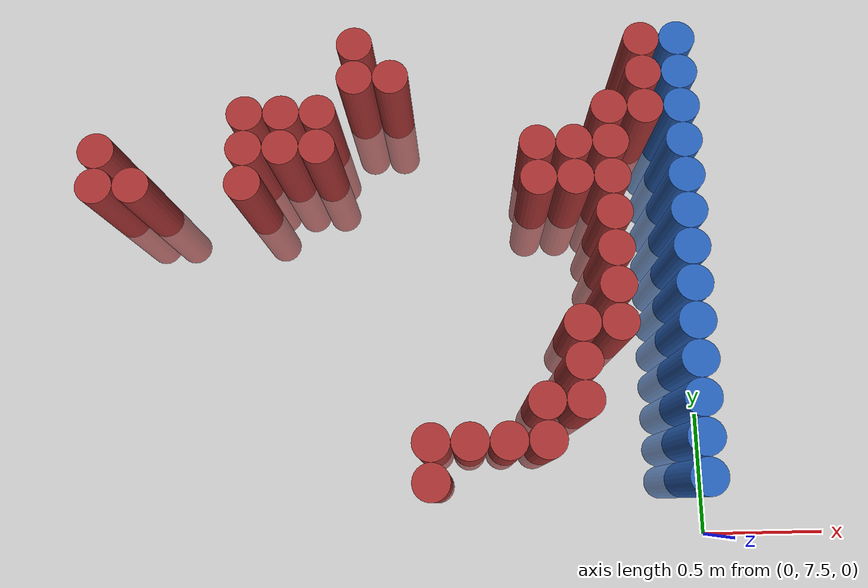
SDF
<sdf version="1.6">
 <world name="default">
  <model name="ground_plane">
   <static>1</static>
   <link name="link">
    <collision name="collision">
     <geometry><plane><normal>0 0 1</normal><size>100 100</size></plane></geometry>
     <surface><friction><ode><mu>100</mu><mu2>50</mu2></ode></friction></surface>
    </collision>
    <visual name="visual">
     <cast_shadows>0</cast_shadows>
     <geometry><plane><normal>0 0 1</normal><size>100 100</size></plane></geometry>
     <material>
      <script><uri>file://media/materials/scripts/gazebo.material</uri><name>Gazebo/Grey</name></script>
     </material>
    </visual>
   </link>
  </model>
  <model name="unit_cylinder_165">
   <static>1</static>
   <pose>-2.475000 8.925000 0.000000 0.000000 0.000000 0.000000</pose>
   <link name="link">
    <inertial>
     <mass>1</mass>
     <inertia><ixx>0.145833</ixx><ixy>0</ixy><ixz>0</ixz><iyy>0.145833</iyy><iyz>0</iyz><izz>0.125</izz></inertia>
    </inertial>
    <collision name="collision">
     <geometry><cylinder><radius>0.075000</radius><length>1</length></cylinder></geometry>
    </collision>
    <visual name="visual">
     <geometry><cylinder><radius>0.075000</radius><length>1</length></cylinder></geometry>
     <material>
      <ambient>0.648000 0.192000 0.192000 1</ambient>
      <diffuse>0.648000 0.192000 0.192000 1</diffuse>
     </material>
     <material>
      <script><name>Gazebo/Grey</name><uri>file://media/materials/scripts/gazebo.material</uri></script>
     </material>
    </visual>
   </link>
  </model>
  <model name="unit_cylinder_166">
   <static>1</static>
   <pose>-2.475000 9.075000 0.000000 0.000000 0.000000 0.000000</pose>
   <link name="link">
    <inertial>
     <mass>1</mass>
     <inertia><ixx>0.145833</ixx><ixy>0</ixy><ixz>0</ixz><iyy>0.145833</iyy><iyz>0</iyz><izz>0.125</izz></inertia>
    </inertial>
    <collision name="collision">
     <geometry><cylinder><radius>0.075000</radius><length>1</length></cylinder></geometry>
    </collision>
    <visual name="visual">
     <geometry><cylinder><radius>0.075000</radius><length>1</length></cylinder></geometry>
     <material>
      <ambient>0.648000 0.192000 0.192000 1</ambient>
      <diffuse>0.648000 0.192000 0.192000 1</diffuse>
     </material>
     <material>
      <script><name>Gazebo/Grey</name><uri>file://media/materials/scripts/gazebo.material</uri></script>
     </material>
    </visual>
   </link>
  </model>
  <model name="unit_cylinder_167">
   <static>1</static>
   <pose>-2.325000 8.925000 0.000000 0.000000 0.000000 0.000000</pose>
   <link name="link">
    <inertial>
     <mass>1</mass>
     <inertia><ixx>0.145833</ixx><ixy>0</ixy><ixz>0</ixz><iyy>0.145833</iyy><iyz>0</iyz><izz>0.125</izz></inertia>
    </inertial>
    <collision name="collision">
     <geometry><cylinder><radius>0.075000</radius><length>1</length></cylinder></geometry>
    </collision>
    <visual name="visual">
     <geometry><cylinder><radius>0.075000</radius><length>1</length></cylinder></geometry>
     <material>
      <ambient>0.648000 0.192000 0.192000 1</ambient>
      <diffuse>0.648000 0.192000 0.192000 1</diffuse>
     </material>
     <material>
      <script><name>Gazebo/Grey</name><uri>file://media/materials/scripts/gazebo.material</uri></script>
     </material>
    </visual>
   </link>
  </model>
  <model name="unit_cylinder_176">
   <static>1</static>
   <pose>-1.875000 8.925000 0.000000 0.000000 0.000000 0.000000</pose>
   <link name="link">
    <inertial>
     <mass>1</mass>
     <inertia><ixx>0.145833</ixx><ixy>0</ixy><ixz>0</ixz><iyy>0.145833</iyy><iyz>0</iyz><izz>0.125</izz></inertia>
    </inertial>
    <collision name="collision">
     <geometry><cylinder><radius>0.075000</radius><length>1</length></cylinder></geometry>
    </collision>
    <visual name="visual">
     <geometry><cylinder><radius>0.075000</radius><length>1</length></cylinder></geometry>
     <material>
      <ambient>0.648000 0.192000 0.192000 1</ambient>
      <diffuse>0.648000 0.192000 0.192000 1</diffuse>
     </material>
     <material>
      <script><name>Gazebo/Grey</name><uri>file://media/materials/scripts/gazebo.material</uri></script>
     </material>
    </visual>
   </link>
  </model>
  <model name="unit_cylinder_177">
   <static>1</static>
   <pose>-1.875000 9.075000 0.000000 0.000000 0.000000 0.000000</pose>
   <link name="link">
    <inertial>
     <mass>1</mass>
     <inertia><ixx>0.145833</ixx><ixy>0</ixy><ixz>0</ixz><iyy>0.145833</iyy><iyz>0</iyz><izz>0.125</izz></inertia>
    </inertial>
    <collision name="collision">
     <geometry><cylinder><radius>0.075000</radius><length>1</length></cylinder></geometry>
    </collision>
    <visual name="visual">
     <geometry><cylinder><radius>0.075000</radius><length>1</length></cylinder></geometry>
     <material>
      <ambient>0.648000 0.192000 0.192000 1</ambient>
      <diffuse>0.648000 0.192000 0.192000 1</diffuse>
     </material>
     <material>
      <script><name>Gazebo/Grey</name><uri>file://media/materials/scripts/gazebo.material</uri></script>
     </material>
    </visual>
   </link>
  </model>
  <model name="unit_cylinder_178">
   <static>1</static>
   <pose>-1.875000 9.225000 0.000000 0.000000 0.000000 0.000000</pose>
   <link name="link">
    <inertial>
     <mass>1</mass>
     <inertia><ixx>0.145833</ixx><ixy>0</ixy><ixz>0</ixz><iyy>0.145833</iyy><iyz>0</iyz><izz>0.125</izz></inertia>
    </inertial>
    <collision name="collision">
     <geometry><cylinder><radius>0.075000</radius><length>1</length></cylinder></geometry>
    </collision>
    <visual name="visual">
     <geometry><cylinder><radius>0.075000</radius><length>1</length></cylinder></geometry>
     <material>
      <ambient>0.648000 0.192000 0.192000 1</ambient>
      <diffuse>0.648000 0.192000 0.192000 1</diffuse>
     </material>
     <material>
      <script><name>Gazebo/Grey</name><uri>file://media/materials/scripts/gazebo.material</uri></script>
     </material>
    </visual>
   </link>
  </model>
  <model name="unit_cylinder_188">
   <static>1</static>
   <pose>-1.725000 9.075000 0.000000 0.000000 0.000000 0.000000</pose>
   <link name="link">
    <inertial>
     <mass>1</mass>
     <inertia><ixx>0.145833</ixx><ixy>0</ixy><ixz>0</ixz><iyy>0.145833</iyy><iyz>0</iyz><izz>0.125</izz></inertia>
    </inertial>
    <collision name="collision">
     <geometry><cylinder><radius>0.075000</radius><length>1</length></cylinder></geometry>
    </collision>
    <visual name="visual">
     <geometry><cylinder><radius>0.075000</radius><length>1</length></cylinder></geometry>
     <material>
      <ambient>0.648000 0.192000 0.192000 1</ambient>
      <diffuse>0.648000 0.192000 0.192000 1</diffuse>
     </material>
     <material>
      <script><name>Gazebo/Grey</name><uri>file://media/materials/scripts/gazebo.material</uri></script>
     </material>
    </visual>
   </link>
  </model>
  <model name="unit_cylinder_189">
   <static>1</static>
   <pose>-1.725000 9.225000 0.000000 0.000000 0.000000 0.000000</pose>
   <link name="link">
    <inertial>
     <mass>1</mass>
     <inertia><ixx>0.145833</ixx><ixy>0</ixy><ixz>0</ixz><iyy>0.145833</iyy><iyz>0</iyz><izz>0.125</izz></inertia>
    </inertial>
    <collision name="collision">
     <geometry><cylinder><radius>0.075000</radius><length>1</length></cylinder></geometry>
    </collision>
    <visual name="visual">
     <geometry><cylinder><radius>0.075000</radius><length>1</length></cylinder></geometry>
     <material>
      <ambient>0.648000 0.192000 0.192000 1</ambient>
      <diffuse>0.648000 0.192000 0.192000 1</diffuse>
     </material>
     <material>
      <script><name>Gazebo/Grey</name><uri>file://media/materials/scripts/gazebo.material</uri></script>
     </material>
    </visual>
   </link>
  </model>
  <model name="unit_cylinder_193">
   <static>1</static>
   <pose>-1.575000 9.075000 0.000000 0.000000 0.000000 0.000000</pose>
   <link name="link">
    <inertial>
     <mass>1</mass>
     <inertia><ixx>0.145833</ixx><ixy>0</ixy><ixz>0</ixz><iyy>0.145833</iyy><iyz>0</iyz><izz>0.125</izz></inertia>
    </inertial>
    <collision name="collision">
     <geometry><cylinder><radius>0.075000</radius><length>1</length></cylinder></geometry>
    </collision>
    <visual name="visual">
     <geometry><cylinder><radius>0.075000</radius><length>1</length></cylinder></geometry>
     <material>
      <ambient>0.648000 0.192000 0.192000 1</ambient>
      <diffuse>0.648000 0.192000 0.192000 1</diffuse>
     </material>
     <material>
      <script><name>Gazebo/Grey</name><uri>file://media/materials/scripts/gazebo.material</uri></script>
     </material>
    </visual>
   </link>
  </model>
  <model name="unit_cylinder_194">
   <static>1</static>
   <pose>-1.575000 9.225000 0.000000 0.000000 0.000000 0.000000</pose>
   <link name="link">
    <inertial>
     <mass>1</mass>
     <inertia><ixx>0.145833</ixx><ixy>0</ixy><ixz>0</ixz><iyy>0.145833</iyy><iyz>0</iyz><izz>0.125</izz></inertia>
    </inertial>
    <collision name="collision">
     <geometry><cylinder><radius>0.075000</radius><length>1</length></cylinder></geometry>
    </collision>
    <visual name="visual">
     <geometry><cylinder><radius>0.075000</radius><length>1</length></cylinder></geometry>
     <material>
      <ambient>0.648000 0.192000 0.192000 1</ambient>
      <diffuse>0.648000 0.192000 0.192000 1</diffuse>
     </material>
     <material>
      <script><name>Gazebo/Grey</name><uri>file://media/materials/scripts/gazebo.material</uri></script>
     </material>
    </visual>
   </link>
  </model>
  <model name="unit_cylinder_197">
   <static>1</static>
   <pose>-1.425000 9.375000 0.000000 0.000000 0.000000 0.000000</pose>
   <link name="link">
    <inertial>
     <mass>1</mass>
     <inertia><ixx>0.145833</ixx><ixy>0</ixy><ixz>0</ixz><iyy>0.145833</iyy><iyz>0</iyz><izz>0.125</izz></inertia>
    </inertial>
    <collision name="collision">
     <geometry><cylinder><radius>0.075000</radius><length>1</length></cylinder></geometry>
    </collision>
    <visual name="visual">
     <geometry><cylinder><radius>0.075000</radius><length>1</length></cylinder></geometry>
     <material>
      <ambient>0.648000 0.192000 0.192000 1</ambient>
      <diffuse>0.648000 0.192000 0.192000 1</diffuse>
     </material>
     <material>
      <script><name>Gazebo/Grey</name><uri>file://media/materials/scripts/gazebo.material</uri></script>
     </material>
    </visual>
   </link>
  </model>
  <model name="unit_cylinder_198">
   <static>1</static>
   <pose>-1.425000 9.525000 0.000000 0.000000 0.000000 0.000000</pose>
   <link name="link">
    <inertial>
     <mass>1</mass>
     <inertia><ixx>0.145833</ixx><ixy>0</ixy><ixz>0</ixz><iyy>0.145833</iyy><iyz>0</iyz><izz>0.125</izz></inertia>
    </inertial>
    <collision name="collision">
     <geometry><cylinder><radius>0.075000</radius><length>1</length></cylinder></geometry>
    </collision>
    <visual name="visual">
     <geometry><cylinder><radius>0.075000</radius><length>1</length></cylinder></geometry>
     <material>
      <ambient>0.648000 0.192000 0.192000 1</ambient>
      <diffuse>0.648000 0.192000 0.192000 1</diffuse>
     </material>
     <material>
      <script><name>Gazebo/Grey</name><uri>file://media/materials/scripts/gazebo.material</uri></script>
     </material>
    </visual>
   </link>
  </model>
  <model name="unit_cylinder_206">
   <static>1</static>
   <pose>-1.275000 9.375000 0.000000 0.000000 0.000000 0.000000</pose>
   <link name="link">
    <inertial>
     <mass>1</mass>
     <inertia><ixx>0.145833</ixx><ixy>0</ixy><ixz>0</ixz><iyy>0.145833</iyy><iyz>0</iyz><izz>0.125</izz></inertia>
    </inertial>
    <collision name="collision">
     <geometry><cylinder><radius>0.075000</radius><length>1</length></cylinder></geometry>
    </collision>
    <visual name="visual">
     <geometry><cylinder><radius>0.075000</radius><length>1</length></cylinder></geometry>
     <material>
      <ambient>0.648000 0.192000 0.192000 1</ambient>
      <diffuse>0.648000 0.192000 0.192000 1</diffuse>
     </material>
     <material>
      <script><name>Gazebo/Grey</name><uri>file://media/materials/scripts/gazebo.material</uri></script>
     </material>
    </visual>
   </link>
  </model>
  <model name="unit_cylinder_210">
   <static>1</static>
   <pose>-1.125000 7.725000 0.000000 0.000000 0.000000 0.000000</pose>
   <link name="link">
    <inertial>
     <mass>1</mass>
     <inertia><ixx>0.145833</ixx><ixy>0</ixy><ixz>0</ixz><iyy>0.145833</iyy><iyz>0</iyz><izz>0.125</izz></inertia>
    </inertial>
    <collision name="collision">
     <geometry><cylinder><radius>0.075000</radius><length>1</length></cylinder></geometry>
    </collision>
    <visual name="visual">
     <geometry><cylinder><radius>0.075000</radius><length>1</length></cylinder></geometry>
     <material>
      <ambient>0.648000 0.192000 0.192000 1</ambient>
      <diffuse>0.648000 0.192000 0.192000 1</diffuse>
     </material>
     <material>
      <script><name>Gazebo/Grey</name><uri>file://media/materials/scripts/gazebo.material</uri></script>
     </material>
    </visual>
   </link>
  </model>
  <model name="unit_cylinder_211">
   <static>1</static>
   <pose>-1.125000 7.875000 0.000000 0.000000 0.000000 0.000000</pose>
   <link name="link">
    <inertial>
     <mass>1</mass>
     <inertia><ixx>0.145833</ixx><ixy>0</ixy><ixz>0</ixz><iyy>0.145833</iyy><iyz>0</iyz><izz>0.125</izz></inertia>
    </inertial>
    <collision name="collision">
     <geometry><cylinder><radius>0.075000</radius><length>1</length></cylinder></geometry>
    </collision>
    <visual name="visual">
     <geometry><cylinder><radius>0.075000</radius><length>1</length></cylinder></geometry>
     <material>
      <ambient>0.648000 0.192000 0.192000 1</ambient>
      <diffuse>0.648000 0.192000 0.192000 1</diffuse>
     </material>
     <material>
      <script><name>Gazebo/Grey</name><uri>file://media/materials/scripts/gazebo.material</uri></script>
     </material>
    </visual>
   </link>
  </model>
  <model name="unit_cylinder_214">
   <static>1</static>
   <pose>-0.975000 7.875000 0.000000 0.000000 0.000000 0.000000</pose>
   <link name="link">
    <inertial>
     <mass>1</mass>
     <inertia><ixx>0.145833</ixx><ixy>0</ixy><ixz>0</ixz><iyy>0.145833</iyy><iyz>0</iyz><izz>0.125</izz></inertia>
    </inertial>
    <collision name="collision">
     <geometry><cylinder><radius>0.075000</radius><length>1</length></cylinder></geometry>
    </collision>
    <visual name="visual">
     <geometry><cylinder><radius>0.075000</radius><length>1</length></cylinder></geometry>
     <material>
      <ambient>0.648000 0.192000 0.192000 1</ambient>
      <diffuse>0.648000 0.192000 0.192000 1</diffuse>
     </material>
     <material>
      <script><name>Gazebo/Grey</name><uri>file://media/materials/scripts/gazebo.material</uri></script>
     </material>
    </visual>
   </link>
  </model>
  <model name="unit_cylinder_219">
   <static>1</static>
   <pose>-0.825000 7.875000 0.000000 0.000000 0.000000 0.000000</pose>
   <link name="link">
    <inertial>
     <mass>1</mass>
     <inertia><ixx>0.145833</ixx><ixy>0</ixy><ixz>0</ixz><iyy>0.145833</iyy><iyz>0</iyz><izz>0.125</izz></inertia>
    </inertial>
    <collision name="collision">
     <geometry><cylinder><radius>0.075000</radius><length>1</length></cylinder></geometry>
    </collision>
    <visual name="visual">
     <geometry><cylinder><radius>0.075000</radius><length>1</length></cylinder></geometry>
     <material>
      <ambient>0.648000 0.192000 0.192000 1</ambient>
      <diffuse>0.648000 0.192000 0.192000 1</diffuse>
     </material>
     <material>
      <script><name>Gazebo/Grey</name><uri>file://media/materials/scripts/gazebo.material</uri></script>
     </material>
    </visual>
   </link>
  </model>
  <model name="unit_cylinder_225">
   <static>1</static>
   <pose>-0.675000 7.875000 0.000000 0.000000 0.000000 0.000000</pose>
   <link name="link">
    <inertial>
     <mass>1</mass>
     <inertia><ixx>0.145833</ixx><ixy>0</ixy><ixz>0</ixz><iyy>0.145833</iyy><iyz>0</iyz><izz>0.125</izz></inertia>
    </inertial>
    <collision name="collision">
     <geometry><cylinder><radius>0.075000</radius><length>1</length></cylinder></geometry>
    </collision>
    <visual name="visual">
     <geometry><cylinder><radius>0.075000</radius><length>1</length></cylinder></geometry>
     <material>
      <ambient>0.648000 0.192000 0.192000 1</ambient>
      <diffuse>0.648000 0.192000 0.192000 1</diffuse>
     </material>
     <material>
      <script><name>Gazebo/Grey</name><uri>file://media/materials/scripts/gazebo.material</uri></script>
     </material>
    </visual>
   </link>
  </model>
  <model name="unit_cylinder_226">
   <static>1</static>
   <pose>-0.675000 8.025000 0.000000 0.000000 0.000000 0.000000</pose>
   <link name="link">
    <inertial>
     <mass>1</mass>
     <inertia><ixx>0.145833</ixx><ixy>0</ixy><ixz>0</ixz><iyy>0.145833</iyy><iyz>0</iyz><izz>0.125</izz></inertia>
    </inertial>
    <collision name="collision">
     <geometry><cylinder><radius>0.075000</radius><length>1</length></cylinder></geometry>
    </collision>
    <visual name="visual">
     <geometry><cylinder><radius>0.075000</radius><length>1</length></cylinder></geometry>
     <material>
      <ambient>0.648000 0.192000 0.192000 1</ambient>
      <diffuse>0.648000 0.192000 0.192000 1</diffuse>
     </material>
     <material>
      <script><name>Gazebo/Grey</name><uri>file://media/materials/scripts/gazebo.material</uri></script>
     </material>
    </visual>
   </link>
  </model>
  <model name="unit_cylinder_227">
   <static>1</static>
   <pose>-0.675000 8.925000 0.000000 0.000000 0.000000 0.000000</pose>
   <link name="link">
    <inertial>
     <mass>1</mass>
     <inertia><ixx>0.145833</ixx><ixy>0</ixy><ixz>0</ixz><iyy>0.145833</iyy><iyz>0</iyz><izz>0.125</izz></inertia>
    </inertial>
    <collision name="collision">
     <geometry><cylinder><radius>0.075000</radius><length>1</length></cylinder></geometry>
    </collision>
    <visual name="visual">
     <geometry><cylinder><radius>0.075000</radius><length>1</length></cylinder></geometry>
     <material>
      <ambient>0.648000 0.192000 0.192000 1</ambient>
      <diffuse>0.648000 0.192000 0.192000 1</diffuse>
     </material>
     <material>
      <script><name>Gazebo/Grey</name><uri>file://media/materials/scripts/gazebo.material</uri></script>
     </material>
    </visual>
   </link>
  </model>
  <model name="unit_cylinder_228">
   <static>1</static>
   <pose>-0.675000 9.075000 0.000000 0.000000 0.000000 0.000000</pose>
   <link name="link">
    <inertial>
     <mass>1</mass>
     <inertia><ixx>0.145833</ixx><ixy>0</ixy><ixz>0</ixz><iyy>0.145833</iyy><iyz>0</iyz><izz>0.125</izz></inertia>
    </inertial>
    <collision name="collision">
     <geometry><cylinder><radius>0.075000</radius><length>1</length></cylinder></geometry>
    </collision>
    <visual name="visual">
     <geometry><cylinder><radius>0.075000</radius><length>1</length></cylinder></geometry>
     <material>
      <ambient>0.648000 0.192000 0.192000 1</ambient>
      <diffuse>0.648000 0.192000 0.192000 1</diffuse>
     </material>
     <material>
      <script><name>Gazebo/Grey</name><uri>file://media/materials/scripts/gazebo.material</uri></script>
     </material>
    </visual>
   </link>
  </model>
  <model name="unit_cylinder_235">
   <static>1</static>
   <pose>-0.525000 8.025000 0.000000 0.000000 0.000000 0.000000</pose>
   <link name="link">
    <inertial>
     <mass>1</mass>
     <inertia><ixx>0.145833</ixx><ixy>0</ixy><ixz>0</ixz><iyy>0.145833</iyy><iyz>0</iyz><izz>0.125</izz></inertia>
    </inertial>
    <collision name="collision">
     <geometry><cylinder><radius>0.075000</radius><length>1</length></cylinder></geometry>
    </collision>
    <visual name="visual">
     <geometry><cylinder><radius>0.075000</radius><length>1</length></cylinder></geometry>
     <material>
      <ambient>0.648000 0.192000 0.192000 1</ambient>
      <diffuse>0.648000 0.192000 0.192000 1</diffuse>
     </material>
     <material>
      <script><name>Gazebo/Grey</name><uri>file://media/materials/scripts/gazebo.material</uri></script>
     </material>
    </visual>
   </link>
  </model>
  <model name="unit_cylinder_236">
   <static>1</static>
   <pose>-0.525000 8.175000 0.000000 0.000000 0.000000 0.000000</pose>
   <link name="link">
    <inertial>
     <mass>1</mass>
     <inertia><ixx>0.145833</ixx><ixy>0</ixy><ixz>0</ixz><iyy>0.145833</iyy><iyz>0</iyz><izz>0.125</izz></inertia>
    </inertial>
    <collision name="collision">
     <geometry><cylinder><radius>0.075000</radius><length>1</length></cylinder></geometry>
    </collision>
    <visual name="visual">
     <geometry><cylinder><radius>0.075000</radius><length>1</length></cylinder></geometry>
     <material>
      <ambient>0.648000 0.192000 0.192000 1</ambient>
      <diffuse>0.648000 0.192000 0.192000 1</diffuse>
     </material>
     <material>
      <script><name>Gazebo/Grey</name><uri>file://media/materials/scripts/gazebo.material</uri></script>
     </material>
    </visual>
   </link>
  </model>
  <model name="unit_cylinder_237">
   <static>1</static>
   <pose>-0.525000 8.325000 0.000000 0.000000 0.000000 0.000000</pose>
   <link name="link">
    <inertial>
     <mass>1</mass>
     <inertia><ixx>0.145833</ixx><ixy>0</ixy><ixz>0</ixz><iyy>0.145833</iyy><iyz>0</iyz><izz>0.125</izz></inertia>
    </inertial>
    <collision name="collision">
     <geometry><cylinder><radius>0.075000</radius><length>1</length></cylinder></geometry>
    </collision>
    <visual name="visual">
     <geometry><cylinder><radius>0.075000</radius><length>1</length></cylinder></geometry>
     <material>
      <ambient>0.648000 0.192000 0.192000 1</ambient>
      <diffuse>0.648000 0.192000 0.192000 1</diffuse>
     </material>
     <material>
      <script><name>Gazebo/Grey</name><uri>file://media/materials/scripts/gazebo.material</uri></script>
     </material>
    </visual>
   </link>
  </model>
  <model name="unit_cylinder_238">
   <static>1</static>
   <pose>-0.525000 8.925000 0.000000 0.000000 0.000000 0.000000</pose>
   <link name="link">
    <inertial>
     <mass>1</mass>
     <inertia><ixx>0.145833</ixx><ixy>0</ixy><ixz>0</ixz><iyy>0.145833</iyy><iyz>0</iyz><izz>0.125</izz></inertia>
    </inertial>
    <collision name="collision">
     <geometry><cylinder><radius>0.075000</radius><length>1</length></cylinder></geometry>
    </collision>
    <visual name="visual">
     <geometry><cylinder><radius>0.075000</radius><length>1</length></cylinder></geometry>
     <material>
      <ambient>0.648000 0.192000 0.192000 1</ambient>
      <diffuse>0.648000 0.192000 0.192000 1</diffuse>
     </material>
     <material>
      <script><name>Gazebo/Grey</name><uri>file://media/materials/scripts/gazebo.material</uri></script>
     </material>
    </visual>
   </link>
  </model>
  <model name="unit_cylinder_239">
   <static>1</static>
   <pose>-0.525000 9.075000 0.000000 0.000000 0.000000 0.000000</pose>
   <link name="link">
    <inertial>
     <mass>1</mass>
     <inertia><ixx>0.145833</ixx><ixy>0</ixy><ixz>0</ixz><iyy>0.145833</iyy><iyz>0</iyz><izz>0.125</izz></inertia>
    </inertial>
    <collision name="collision">
     <geometry><cylinder><radius>0.075000</radius><length>1</length></cylinder></geometry>
    </collision>
    <visual name="visual">
     <geometry><cylinder><radius>0.075000</radius><length>1</length></cylinder></geometry>
     <material>
      <ambient>0.648000 0.192000 0.192000 1</ambient>
      <diffuse>0.648000 0.192000 0.192000 1</diffuse>
     </material>
     <material>
      <script><name>Gazebo/Grey</name><uri>file://media/materials/scripts/gazebo.material</uri></script>
     </material>
    </visual>
   </link>
  </model>
  <model name="unit_cylinder_247">
   <static>1</static>
   <pose>-0.375000 8.325000 0.000000 0.000000 0.000000 0.000000</pose>
   <link name="link">
    <inertial>
     <mass>1</mass>
     <inertia><ixx>0.145833</ixx><ixy>0</ixy><ixz>0</ixz><iyy>0.145833</iyy><iyz>0</iyz><izz>0.125</izz></inertia>
    </inertial>
    <collision name="collision">
     <geometry><cylinder><radius>0.075000</radius><length>1</length></cylinder></geometry>
    </collision>
    <visual name="visual">
     <geometry><cylinder><radius>0.075000</radius><length>1</length></cylinder></geometry>
     <material>
      <ambient>0.648000 0.192000 0.192000 1</ambient>
      <diffuse>0.648000 0.192000 0.192000 1</diffuse>
     </material>
     <material>
      <script><name>Gazebo/Grey</name><uri>file://media/materials/scripts/gazebo.material</uri></script>
     </material>
    </visual>
   </link>
  </model>
  <model name="unit_cylinder_248">
   <static>1</static>
   <pose>-0.375000 8.475000 0.000000 0.000000 0.000000 0.000000</pose>
   <link name="link">
    <inertial>
     <mass>1</mass>
     <inertia><ixx>0.145833</ixx><ixy>0</ixy><ixz>0</ixz><iyy>0.145833</iyy><iyz>0</iyz><izz>0.125</izz></inertia>
    </inertial>
    <collision name="collision">
     <geometry><cylinder><radius>0.075000</radius><length>1</length></cylinder></geometry>
    </collision>
    <visual name="visual">
     <geometry><cylinder><radius>0.075000</radius><length>1</length></cylinder></geometry>
     <material>
      <ambient>0.648000 0.192000 0.192000 1</ambient>
      <diffuse>0.648000 0.192000 0.192000 1</diffuse>
     </material>
     <material>
      <script><name>Gazebo/Grey</name><uri>file://media/materials/scripts/gazebo.material</uri></script>
     </material>
    </visual>
   </link>
  </model>
  <model name="unit_cylinder_249">
   <static>1</static>
   <pose>-0.375000 8.625000 0.000000 0.000000 0.000000 0.000000</pose>
   <link name="link">
    <inertial>
     <mass>1</mass>
     <inertia><ixx>0.145833</ixx><ixy>0</ixy><ixz>0</ixz><iyy>0.145833</iyy><iyz>0</iyz><izz>0.125</izz></inertia>
    </inertial>
    <collision name="collision">
     <geometry><cylinder><radius>0.075000</radius><length>1</length></cylinder></geometry>
    </collision>
    <visual name="visual">
     <geometry><cylinder><radius>0.075000</radius><length>1</length></cylinder></geometry>
     <material>
      <ambient>0.648000 0.192000 0.192000 1</ambient>
      <diffuse>0.648000 0.192000 0.192000 1</diffuse>
     </material>
     <material>
      <script><name>Gazebo/Grey</name><uri>file://media/materials/scripts/gazebo.material</uri></script>
     </material>
    </visual>
   </link>
  </model>
  <model name="unit_cylinder_250">
   <static>1</static>
   <pose>-0.375000 8.775000 0.000000 0.000000 0.000000 0.000000</pose>
   <link name="link">
    <inertial>
     <mass>1</mass>
     <inertia><ixx>0.145833</ixx><ixy>0</ixy><ixz>0</ixz><iyy>0.145833</iyy><iyz>0</iyz><izz>0.125</izz></inertia>
    </inertial>
    <collision name="collision">
     <geometry><cylinder><radius>0.075000</radius><length>1</length></cylinder></geometry>
    </collision>
    <visual name="visual">
     <geometry><cylinder><radius>0.075000</radius><length>1</length></cylinder></geometry>
     <material>
      <ambient>0.648000 0.192000 0.192000 1</ambient>
      <diffuse>0.648000 0.192000 0.192000 1</diffuse>
     </material>
     <material>
      <script><name>Gazebo/Grey</name><uri>file://media/materials/scripts/gazebo.material</uri></script>
     </material>
    </visual>
   </link>
  </model>
  <model name="unit_cylinder_251">
   <static>1</static>
   <pose>-0.375000 8.925000 0.000000 0.000000 0.000000 0.000000</pose>
   <link name="link">
    <inertial>
     <mass>1</mass>
     <inertia><ixx>0.145833</ixx><ixy>0</ixy><ixz>0</ixz><iyy>0.145833</iyy><iyz>0</iyz><izz>0.125</izz></inertia>
    </inertial>
    <collision name="collision">
     <geometry><cylinder><radius>0.075000</radius><length>1</length></cylinder></geometry>
    </collision>
    <visual name="visual">
     <geometry><cylinder><radius>0.075000</radius><length>1</length></cylinder></geometry>
     <material>
      <ambient>0.648000 0.192000 0.192000 1</ambient>
      <diffuse>0.648000 0.192000 0.192000 1</diffuse>
     </material>
     <material>
      <script><name>Gazebo/Grey</name><uri>file://media/materials/scripts/gazebo.material</uri></script>
     </material>
    </visual>
   </link>
  </model>
  <model name="unit_cylinder_252">
   <static>1</static>
   <pose>-0.375000 9.075000 0.000000 0.000000 0.000000 0.000000</pose>
   <link name="link">
    <inertial>
     <mass>1</mass>
     <inertia><ixx>0.145833</ixx><ixy>0</ixy><ixz>0</ixz><iyy>0.145833</iyy><iyz>0</iyz><izz>0.125</izz></inertia>
    </inertial>
    <collision name="collision">
     <geometry><cylinder><radius>0.075000</radius><length>1</length></cylinder></geometry>
    </collision>
    <visual name="visual">
     <geometry><cylinder><radius>0.075000</radius><length>1</length></cylinder></geometry>
     <material>
      <ambient>0.648000 0.192000 0.192000 1</ambient>
      <diffuse>0.648000 0.192000 0.192000 1</diffuse>
     </material>
     <material>
      <script><name>Gazebo/Grey</name><uri>file://media/materials/scripts/gazebo.material</uri></script>
     </material>
    </visual>
   </link>
  </model>
  <model name="unit_cylinder_253">
   <static>1</static>
   <pose>-0.375000 9.225000 0.000000 0.000000 0.000000 0.000000</pose>
   <link name="link">
    <inertial>
     <mass>1</mass>
     <inertia><ixx>0.145833</ixx><ixy>0</ixy><ixz>0</ixz><iyy>0.145833</iyy><iyz>0</iyz><izz>0.125</izz></inertia>
    </inertial>
    <collision name="collision">
     <geometry><cylinder><radius>0.075000</radius><length>1</length></cylinder></geometry>
    </collision>
    <visual name="visual">
     <geometry><cylinder><radius>0.075000</radius><length>1</length></cylinder></geometry>
     <material>
      <ambient>0.648000 0.192000 0.192000 1</ambient>
      <diffuse>0.648000 0.192000 0.192000 1</diffuse>
     </material>
     <material>
      <script><name>Gazebo/Grey</name><uri>file://media/materials/scripts/gazebo.material</uri></script>
     </material>
    </visual>
   </link>
  </model>
  <model name="unit_cylinder_259">
   <static>1</static>
   <pose>-0.225000 9.225000 0.000000 0.000000 0.000000 0.000000</pose>
   <link name="link">
    <inertial>
     <mass>1</mass>
     <inertia><ixx>0.145833</ixx><ixy>0</ixy><ixz>0</ixz><iyy>0.145833</iyy><iyz>0</iyz><izz>0.125</izz></inertia>
    </inertial>
    <collision name="collision">
     <geometry><cylinder><radius>0.075000</radius><length>1</length></cylinder></geometry>
    </collision>
    <visual name="visual">
     <geometry><cylinder><radius>0.075000</radius><length>1</length></cylinder></geometry>
     <material>
      <ambient>0.648000 0.192000 0.192000 1</ambient>
      <diffuse>0.648000 0.192000 0.192000 1</diffuse>
     </material>
     <material>
      <script><name>Gazebo/Grey</name><uri>file://media/materials/scripts/gazebo.material</uri></script>
     </material>
    </visual>
   </link>
  </model>
  <model name="unit_cylinder_260">
   <static>1</static>
   <pose>-0.225000 9.375000 0.000000 0.000000 0.000000 0.000000</pose>
   <link name="link">
    <inertial>
     <mass>1</mass>
     <inertia><ixx>0.145833</ixx><ixy>0</ixy><ixz>0</ixz><iyy>0.145833</iyy><iyz>0</iyz><izz>0.125</izz></inertia>
    </inertial>
    <collision name="collision">
     <geometry><cylinder><radius>0.075000</radius><length>1</length></cylinder></geometry>
    </collision>
    <visual name="visual">
     <geometry><cylinder><radius>0.075000</radius><length>1</length></cylinder></geometry>
     <material>
      <ambient>0.648000 0.192000 0.192000 1</ambient>
      <diffuse>0.648000 0.192000 0.192000 1</diffuse>
     </material>
     <material>
      <script><name>Gazebo/Grey</name><uri>file://media/materials/scripts/gazebo.material</uri></script>
     </material>
    </visual>
   </link>
  </model>
  <model name="unit_cylinder_261">
   <static>1</static>
   <pose>-0.225000 9.525000 0.000000 0.000000 0.000000 0.000000</pose>
   <link name="link">
    <inertial>
     <mass>1</mass>
     <inertia><ixx>0.145833</ixx><ixy>0</ixy><ixz>0</ixz><iyy>0.145833</iyy><iyz>0</iyz><izz>0.125</izz></inertia>
    </inertial>
    <collision name="collision">
     <geometry><cylinder><radius>0.075000</radius><length>1</length></cylinder></geometry>
    </collision>
    <visual name="visual">
     <geometry><cylinder><radius>0.075000</radius><length>1</length></cylinder></geometry>
     <material>
      <ambient>0.648000 0.192000 0.192000 1</ambient>
      <diffuse>0.648000 0.192000 0.192000 1</diffuse>
     </material>
     <material>
      <script><name>Gazebo/Grey</name><uri>file://media/materials/scripts/gazebo.material</uri></script>
     </material>
    </visual>
   </link>
  </model>
  <model name="unit_cylinder_279">
   <static>1</static>
   <pose>-0.075000 7.725000 0.000000 0.000000 0.000000 0.000000</pose>
   <link name="link">
    <inertial>
     <mass>1</mass>
     <inertia><ixx>0.145833</ixx><ixy>0</ixy><ixz>0</ixz><iyy>0.145833</iyy><iyz>0</iyz><izz>0.125</izz></inertia>
    </inertial>
    <collision name="collision">
     <geometry><cylinder><radius>0.075000</radius><length>1</length></cylinder></geometry>
    </collision>
    <visual name="visual">
     <geometry><cylinder><radius>0.075000</radius><length>1</length></cylinder></geometry>
     <material>
      <ambient>0.152000 0.379000 0.720000 1</ambient>
      <diffuse>0.152000 0.379000 0.720000 1</diffuse>
     </material>
     <material>
      <script><name>Gazebo/Grey</name><uri>file://media/materials/scripts/gazebo.material</uri></script>
     </material>
    </visual>
   </link>
  </model>
  <model name="unit_cylinder_280">
   <static>1</static>
   <pose>-0.075000 7.875000 0.000000 0.000000 0.000000 0.000000</pose>
   <link name="link">
    <inertial>
     <mass>1</mass>
     <inertia><ixx>0.145833</ixx><ixy>0</ixy><ixz>0</ixz><iyy>0.145833</iyy><iyz>0</iyz><izz>0.125</izz></inertia>
    </inertial>
    <collision name="collision">
     <geometry><cylinder><radius>0.075000</radius><length>1</length></cylinder></geometry>
    </collision>
    <visual name="visual">
     <geometry><cylinder><radius>0.075000</radius><length>1</length></cylinder></geometry>
     <material>
      <ambient>0.152000 0.379000 0.720000 1</ambient>
      <diffuse>0.152000 0.379000 0.720000 1</diffuse>
     </material>
     <material>
      <script><name>Gazebo/Grey</name><uri>file://media/materials/scripts/gazebo.material</uri></script>
     </material>
    </visual>
   </link>
  </model>
  <model name="unit_cylinder_281">
   <static>1</static>
   <pose>-0.075000 8.025000 0.000000 0.000000 0.000000 0.000000</pose>
   <link name="link">
    <inertial>
     <mass>1</mass>
     <inertia><ixx>0.145833</ixx><ixy>0</ixy><ixz>0</ixz><iyy>0.145833</iyy><iyz>0</iyz><izz>0.125</izz></inertia>
    </inertial>
    <collision name="collision">
     <geometry><cylinder><radius>0.075000</radius><length>1</length></cylinder></geometry>
    </collision>
    <visual name="visual">
     <geometry><cylinder><radius>0.075000</radius><length>1</length></cylinder></geometry>
     <material>
      <ambient>0.152000 0.379000 0.720000 1</ambient>
      <diffuse>0.152000 0.379000 0.720000 1</diffuse>
     </material>
     <material>
      <script><name>Gazebo/Grey</name><uri>file://media/materials/scripts/gazebo.material</uri></script>
     </material>
    </visual>
   </link>
  </model>
  <model name="unit_cylinder_282">
   <static>1</static>
   <pose>-0.075000 8.175000 0.000000 0.000000 0.000000 0.000000</pose>
   <link name="link">
    <inertial>
     <mass>1</mass>
     <inertia><ixx>0.145833</ixx><ixy>0</ixy><ixz>0</ixz><iyy>0.145833</iyy><iyz>0</iyz><izz>0.125</izz></inertia>
    </inertial>
    <collision name="collision">
     <geometry><cylinder><radius>0.075000</radius><length>1</length></cylinder></geometry>
    </collision>
    <visual name="visual">
     <geometry><cylinder><radius>0.075000</radius><length>1</length></cylinder></geometry>
     <material>
      <ambient>0.152000 0.379000 0.720000 1</ambient>
      <diffuse>0.152000 0.379000 0.720000 1</diffuse>
     </material>
     <material>
      <script><name>Gazebo/Grey</name><uri>file://media/materials/scripts/gazebo.material</uri></script>
     </material>
    </visual>
   </link>
  </model>
  <model name="unit_cylinder_283">
   <static>1</static>
   <pose>-0.075000 8.325000 0.000000 0.000000 0.000000 0.000000</pose>
   <link name="link">
    <inertial>
     <mass>1</mass>
     <inertia><ixx>0.145833</ixx><ixy>0</ixy><ixz>0</ixz><iyy>0.145833</iyy><iyz>0</iyz><izz>0.125</izz></inertia>
    </inertial>
    <collision name="collision">
     <geometry><cylinder><radius>0.075000</radius><length>1</length></cylinder></geometry>
    </collision>
    <visual name="visual">
     <geometry><cylinder><radius>0.075000</radius><length>1</length></cylinder></geometry>
     <material>
      <ambient>0.152000 0.379000 0.720000 1</ambient>
      <diffuse>0.152000 0.379000 0.720000 1</diffuse>
     </material>
     <material>
      <script><name>Gazebo/Grey</name><uri>file://media/materials/scripts/gazebo.material</uri></script>
     </material>
    </visual>
   </link>
  </model>
  <model name="unit_cylinder_284">
   <static>1</static>
   <pose>-0.075000 8.475000 0.000000 0.000000 0.000000 0.000000</pose>
   <link name="link">
    <inertial>
     <mass>1</mass>
     <inertia><ixx>0.145833</ixx><ixy>0</ixy><ixz>0</ixz><iyy>0.145833</iyy><iyz>0</iyz><izz>0.125</izz></inertia>
    </inertial>
    <collision name="collision">
     <geometry><cylinder><radius>0.075000</radius><length>1</length></cylinder></geometry>
    </collision>
    <visual name="visual">
     <geometry><cylinder><radius>0.075000</radius><length>1</length></cylinder></geometry>
     <material>
      <ambient>0.152000 0.379000 0.720000 1</ambient>
      <diffuse>0.152000 0.379000 0.720000 1</diffuse>
     </material>
     <material>
      <script><name>Gazebo/Grey</name><uri>file://media/materials/scripts/gazebo.material</uri></script>
     </material>
    </visual>
   </link>
  </model>
  <model name="unit_cylinder_285">
   <static>1</static>
   <pose>-0.075000 8.625000 0.000000 0.000000 0.000000 0.000000</pose>
   <link name="link">
    <inertial>
     <mass>1</mass>
     <inertia><ixx>0.145833</ixx><ixy>0</ixy><ixz>0</ixz><iyy>0.145833</iyy><iyz>0</iyz><izz>0.125</izz></inertia>
    </inertial>
    <collision name="collision">
     <geometry><cylinder><radius>0.075000</radius><length>1</length></cylinder></geometry>
    </collision>
    <visual name="visual">
     <geometry><cylinder><radius>0.075000</radius><length>1</length></cylinder></geometry>
     <material>
      <ambient>0.152000 0.379000 0.720000 1</ambient>
      <diffuse>0.152000 0.379000 0.720000 1</diffuse>
     </material>
     <material>
      <script><name>Gazebo/Grey</name><uri>file://media/materials/scripts/gazebo.material</uri></script>
     </material>
    </visual>
   </link>
  </model>
  <model name="unit_cylinder_286">
   <static>1</static>
   <pose>-0.075000 8.775000 0.000000 0.000000 0.000000 0.000000</pose>
   <link name="link">
    <inertial>
     <mass>1</mass>
     <inertia><ixx>0.145833</ixx><ixy>0</ixy><ixz>0</ixz><iyy>0.145833</iyy><iyz>0</iyz><izz>0.125</izz></inertia>
    </inertial>
    <collision name="collision">
     <geometry><cylinder><radius>0.075000</radius><length>1</length></cylinder></geometry>
    </collision>
    <visual name="visual">
     <geometry><cylinder><radius>0.075000</radius><length>1</length></cylinder></geometry>
     <material>
      <ambient>0.152000 0.379000 0.720000 1</ambient>
      <diffuse>0.152000 0.379000 0.720000 1</diffuse>
     </material>
     <material>
      <script><name>Gazebo/Grey</name><uri>file://media/materials/scripts/gazebo.material</uri></script>
     </material>
    </visual>
   </link>
  </model>
  <model name="unit_cylinder_287">
   <static>1</static>
   <pose>-0.075000 8.925000 0.000000 0.000000 0.000000 0.000000</pose>
   <link name="link">
    <inertial>
     <mass>1</mass>
     <inertia><ixx>0.145833</ixx><ixy>0</ixy><ixz>0</ixz><iyy>0.145833</iyy><iyz>0</iyz><izz>0.125</izz></inertia>
    </inertial>
    <collision name="collision">
     <geometry><cylinder><radius>0.075000</radius><length>1</length></cylinder></geometry>
    </collision>
    <visual name="visual">
     <geometry><cylinder><radius>0.075000</radius><length>1</length></cylinder></geometry>
     <material>
      <ambient>0.152000 0.379000 0.720000 1</ambient>
      <diffuse>0.152000 0.379000 0.720000 1</diffuse>
     </material>
     <material>
      <script><name>Gazebo/Grey</name><uri>file://media/materials/scripts/gazebo.material</uri></script>
     </material>
    </visual>
   </link>
  </model>
  <model name="unit_cylinder_288">
   <static>1</static>
   <pose>-0.075000 9.075000 0.000000 0.000000 0.000000 0.000000</pose>
   <link name="link">
    <inertial>
     <mass>1</mass>
     <inertia><ixx>0.145833</ixx><ixy>0</ixy><ixz>0</ixz><iyy>0.145833</iyy><iyz>0</iyz><izz>0.125</izz></inertia>
    </inertial>
    <collision name="collision">
     <geometry><cylinder><radius>0.075000</radius><length>1</length></cylinder></geometry>
    </collision>
    <visual name="visual">
     <geometry><cylinder><radius>0.075000</radius><length>1</length></cylinder></geometry>
     <material>
      <ambient>0.152000 0.379000 0.720000 1</ambient>
      <diffuse>0.152000 0.379000 0.720000 1</diffuse>
     </material>
     <material>
      <script><name>Gazebo/Grey</name><uri>file://media/materials/scripts/gazebo.material</uri></script>
     </material>
    </visual>
   </link>
  </model>
  <model name="unit_cylinder_289">
   <static>1</static>
   <pose>-0.075000 9.225000 0.000000 0.000000 0.000000 0.000000</pose>
   <link name="link">
    <inertial>
     <mass>1</mass>
     <inertia><ixx>0.145833</ixx><ixy>0</ixy><ixz>0</ixz><iyy>0.145833</iyy><iyz>0</iyz><izz>0.125</izz></inertia>
    </inertial>
    <collision name="collision">
     <geometry><cylinder><radius>0.075000</radius><length>1</length></cylinder></geometry>
    </collision>
    <visual name="visual">
     <geometry><cylinder><radius>0.075000</radius><length>1</length></cylinder></geometry>
     <material>
      <ambient>0.152000 0.379000 0.720000 1</ambient>
      <diffuse>0.152000 0.379000 0.720000 1</diffuse>
     </material>
     <material>
      <script><name>Gazebo/Grey</name><uri>file://media/materials/scripts/gazebo.material</uri></script>
     </material>
    </visual>
   </link>
  </model>
  <model name="unit_cylinder_290">
   <static>1</static>
   <pose>-0.075000 9.375000 0.000000 0.000000 0.000000 0.000000</pose>
   <link name="link">
    <inertial>
     <mass>1</mass>
     <inertia><ixx>0.145833</ixx><ixy>0</ixy><ixz>0</ixz><iyy>0.145833</iyy><iyz>0</iyz><izz>0.125</izz></inertia>
    </inertial>
    <collision name="collision">
     <geometry><cylinder><radius>0.075000</radius><length>1</length></cylinder></geometry>
    </collision>
    <visual name="visual">
     <geometry><cylinder><radius>0.075000</radius><length>1</length></cylinder></geometry>
     <material>
      <ambient>0.152000 0.379000 0.720000 1</ambient>
      <diffuse>0.152000 0.379000 0.720000 1</diffuse>
     </material>
     <material>
      <script><name>Gazebo/Grey</name><uri>file://media/materials/scripts/gazebo.material</uri></script>
     </material>
    </visual>
   </link>
  </model>
  <model name="unit_cylinder_291">
   <static>1</static>
   <pose>-0.075000 9.525000 0.000000 0.000000 0.000000 0.000000</pose>
   <link name="link">
    <inertial>
     <mass>1</mass>
     <inertia><ixx>0.145833</ixx><ixy>0</ixy><ixz>0</ixz><iyy>0.145833</iyy><iyz>0</iyz><izz>0.125</izz></inertia>
    </inertial>
    <collision name="collision">
     <geometry><cylinder><radius>0.075000</radius><length>1</length></cylinder></geometry>
    </collision>
    <visual name="visual">
     <geometry><cylinder><radius>0.075000</radius><length>1</length></cylinder></geometry>
     <material>
      <ambient>0.152000 0.379000 0.720000 1</ambient>
      <diffuse>0.152000 0.379000 0.720000 1</diffuse>
     </material>
     <material>
      <script><name>Gazebo/Grey</name><uri>file://media/materials/scripts/gazebo.material</uri></script>
     </material>
    </visual>
   </link>
  </model>
 </world>
</sdf>
